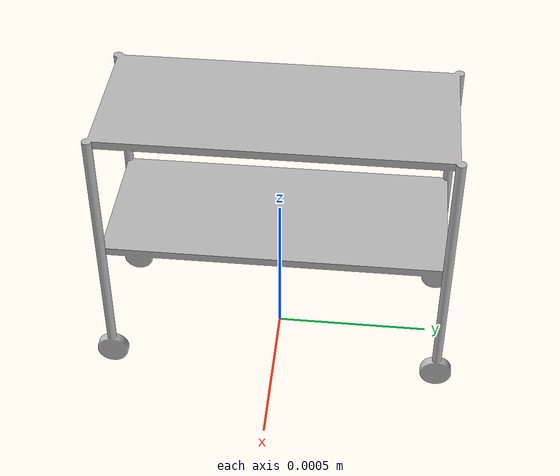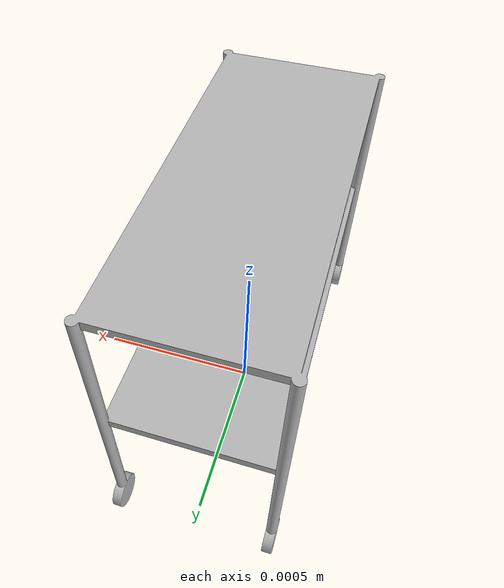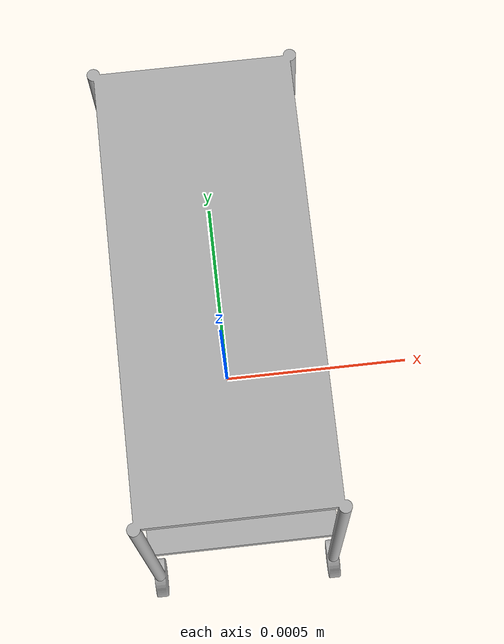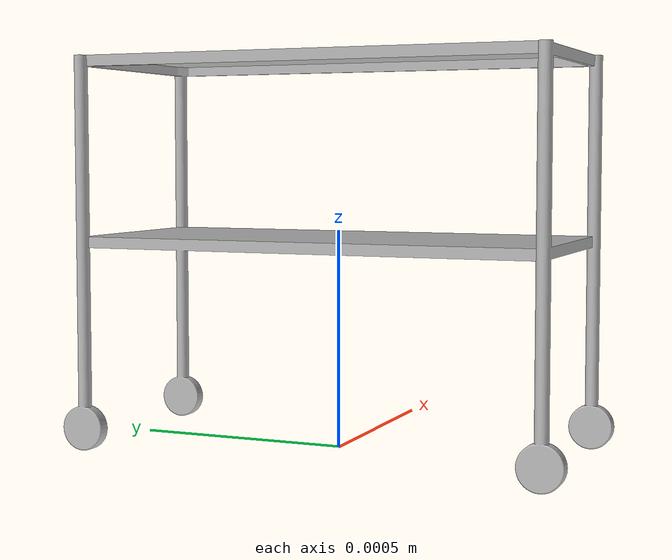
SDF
<?xml version="1.0" ?>
<sdf version="1">
  <model name="CSSD Trolley">
    <static>true</static>
    <link name="link">
      <pose> 0 0 0 0 0 0 </pose>
       <inertial>
        <mass>1.447</mass>
        <pose>0 0 0 0 0 0</pose>
        <inertia>
          <ixx>1.0</ixx>
          <iyy>1.0</iyy>
          <izz>1</izz>
        </inertia>
      </inertial>

      <collision name="collision">
        <geometry>
          <mesh>
            <scale>0.001 0.001 0.001</scale>
            <uri>model://CSSD Trolley/meshes/Trolley_Abdullah_v2.STL</uri>
          </mesh>
        </geometry>
      </collision>
      <visual name="visual">
        <geometry>
          <mesh>
            <scale>0.001 0.001 0.001</scale>
            <uri>model://CSSD Trolley/meshes/Trolley_Abdullah_v2.STL</uri>
          </mesh>
        </geometry>
      </visual>
    </link>
  </model>
</sdf>
